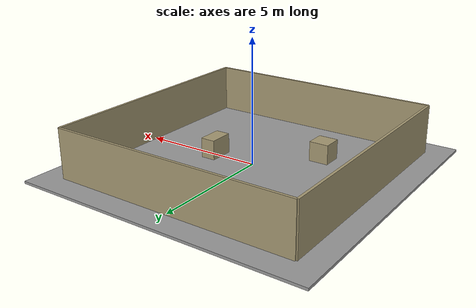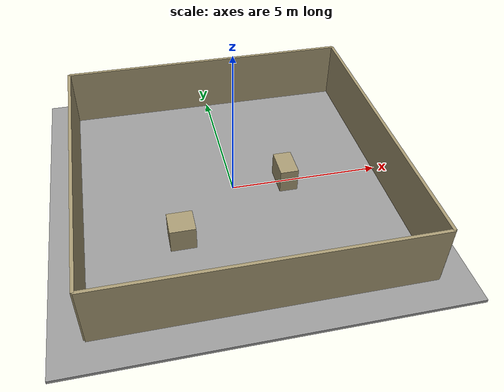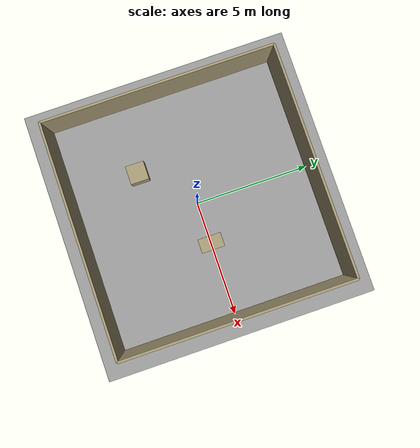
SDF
<sdf version="1.6">
 <world name="patrol">
  <physics type="ode">
   <real_time_update_rate>1000.0</real_time_update_rate>
   <max_step_size>0.001</max_step_size>
   <real_time_factor>1</real_time_factor>
   <ode>
    <solver>
     <type>quick</type>
     <iters>150</iters>
     <precon_iters>0</precon_iters>
     <sor>1.400000</sor>
     <use_dynamic_moi_rescaling>1</use_dynamic_moi_rescaling>
    </solver>
    <constraints>
     <cfm>0.00001</cfm>
     <erp>0.2</erp>
     <contact_max_correcting_vel>2000.000000</contact_max_correcting_vel>
     <contact_surface_layer>0.01000</contact_surface_layer>
    </constraints>
   </ode>
  </physics>
  <scene><ambient>0.7 0.7 0.7 1</ambient><shadows>false</shadows></scene>
  <light name="sun" type="directional"><direction>-.4 .2 -1</direction><diffuse>.9 .9 .9 1</diffuse></light>
  <model name="floor">
   <static>true</static>
   <pose>0 0 -.05 0 0 0</pose>
   <link name="body">
    <collision name="c"><geometry><box><size>12 12 .1</size></box></geometry></collision>
    <visual name="v">
     <geometry><box><size>12 12 .1</size></box></geometry>
     <material><ambient>.6 .6 .6 1</ambient><diffuse>.6 .6 .6 1</diffuse></material>
    </visual>
   </link>
  </model>
  <model name="east">
   <static>true</static>
   <pose>5 0 1 0 0 0</pose>
   <link name="body">
    <collision name="c"><geometry><box><size>.1 10 2</size></box></geometry></collision>
    <visual name="v">
     <geometry><box><size>.1 10 2</size></box></geometry>
     <material><ambient>.65 .6 .45 1</ambient><diffuse>.65 .6 .45 1</diffuse></material>
    </visual>
   </link>
  </model>
  <model name="west">
   <static>true</static>
   <pose>-5 0 1 0 0 0</pose>
   <link name="body">
    <collision name="c"><geometry><box><size>.1 10 2</size></box></geometry></collision>
    <visual name="v">
     <geometry><box><size>.1 10 2</size></box></geometry>
     <material><ambient>.65 .6 .45 1</ambient><diffuse>.65 .6 .45 1</diffuse></material>
    </visual>
   </link>
  </model>
  <model name="north">
   <static>true</static>
   <pose>0 5 1 0 0 0</pose>
   <link name="body">
    <collision name="c"><geometry><box><size>10 .1 2</size></box></geometry></collision>
    <visual name="v">
     <geometry><box><size>10 .1 2</size></box></geometry>
     <material><ambient>.65 .6 .45 1</ambient><diffuse>.65 .6 .45 1</diffuse></material>
    </visual>
   </link>
  </model>
  <model name="south">
   <static>true</static>
   <pose>0 -5 1 0 0 0</pose>
   <link name="body">
    <collision name="c"><geometry><box><size>10 .1 2</size></box></geometry></collision>
    <visual name="v">
     <geometry><box><size>10 .1 2</size></box></geometry>
     <material><ambient>.65 .6 .45 1</ambient><diffuse>.65 .6 .45 1</diffuse></material>
    </visual>
   </link>
  </model>
  <model name="box1">
   <static>true</static>
   <pose>1.8 0 .4 0 0 0</pose>
   <link name="body">
    <collision name="c"><geometry><box><size>.6 1 .8</size></box></geometry></collision>
    <visual name="v">
     <geometry><box><size>.6 1 .8</size></box></geometry>
     <material><ambient>.65 .6 .45 1</ambient><diffuse>.65 .6 .45 1</diffuse></material>
    </visual>
   </link>
  </model>
  <model name="box2">
   <static>true</static>
   <pose>-2 -2 .4 0 0 0</pose>
   <link name="body">
    <collision name="c"><geometry><box><size>.8 .8 .8</size></box></geometry></collision>
    <visual name="v">
     <geometry><box><size>.8 .8 .8</size></box></geometry>
     <material><ambient>.65 .6 .45 1</ambient><diffuse>.65 .6 .45 1</diffuse></material>
    </visual>
   </link>
  </model>
  <model name="person_collision">
   <static>true</static>
   <pose>1 -3 .9 0 0 0</pose>
   <link name="body">
    <collision name="c"><geometry><box><size>.4 .4 1.8</size></box></geometry></collision>
   </link>
  </model>
 </world>
</sdf>
